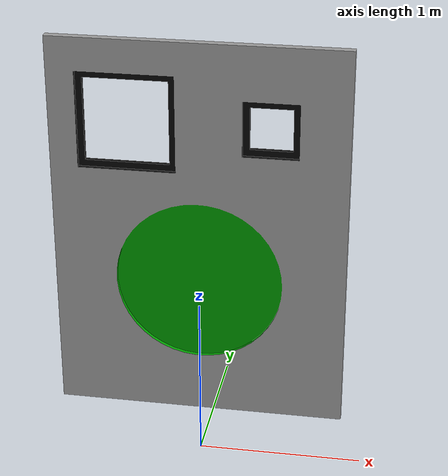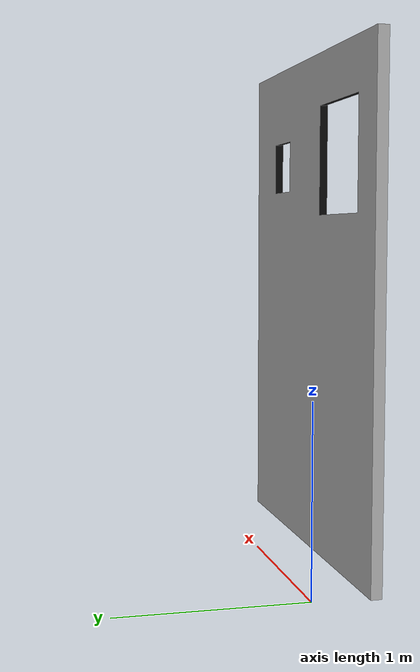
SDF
<?xml version="1.0"?>
<sdf version="1.5">
  <model name="green_circle">
    <static>true</static>
    <pose>0 0 0.3025 0 0 3.14159</pose>
    <link name="base_link">
      <visual name="visual">
        <geometry>
           <mesh>
            <uri>file://identify_symbols_and_dock/green_circle.dae</uri>
          </mesh>
        </geometry>
      </visual>
      <collision name="collision">
        <geometry>
           <mesh>
            <uri>file://identify_symbols_and_dock/green_circle.dae</uri>
          </mesh>
        </geometry>
      </collision>
    </link>
  </model>
</sdf>
